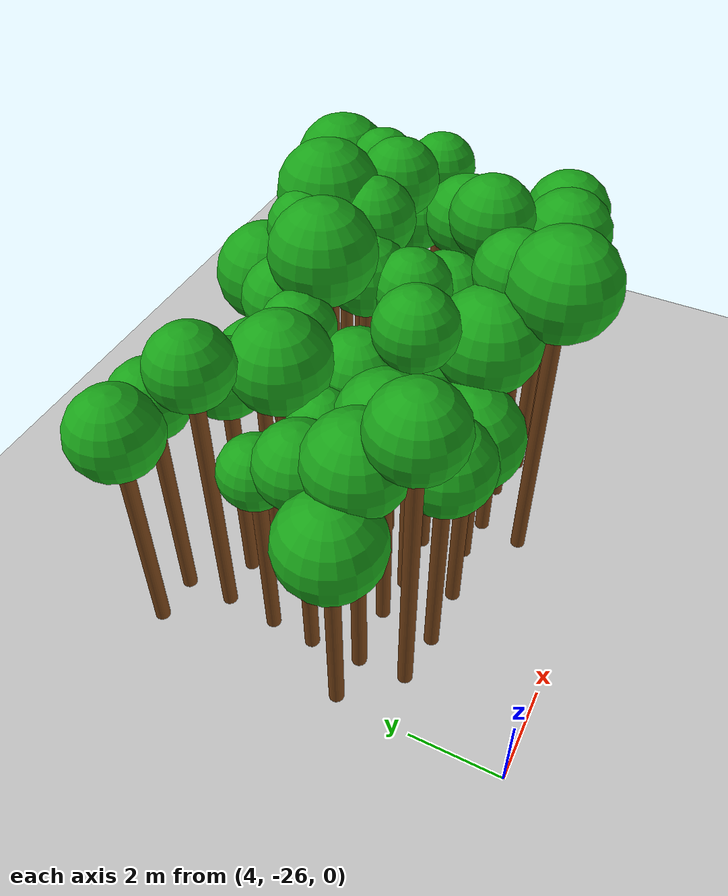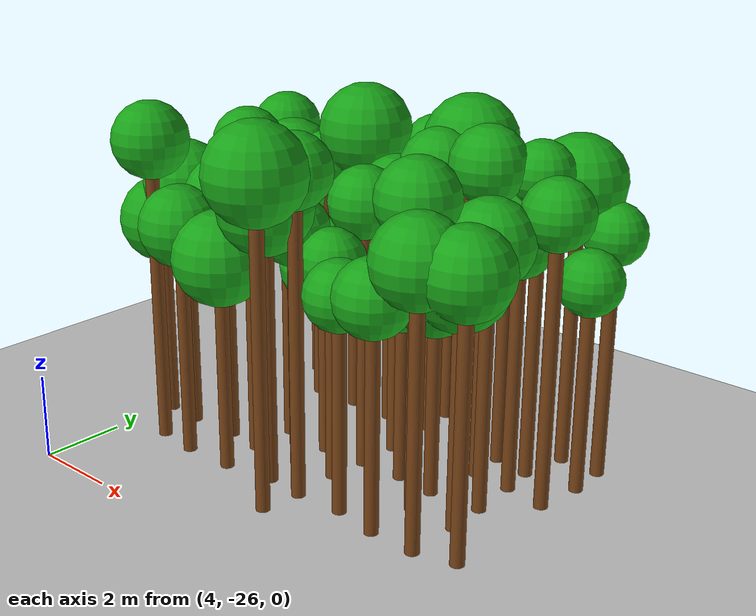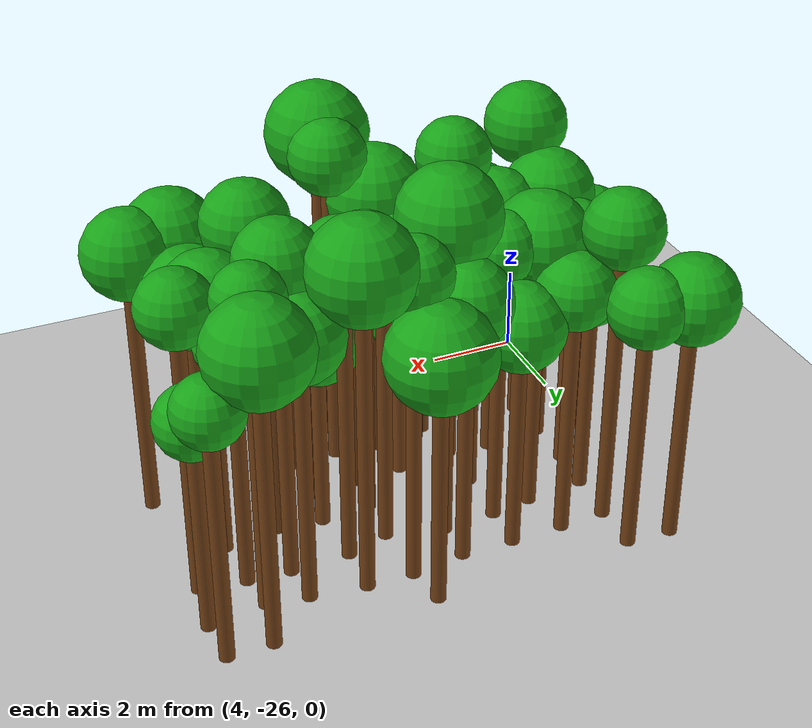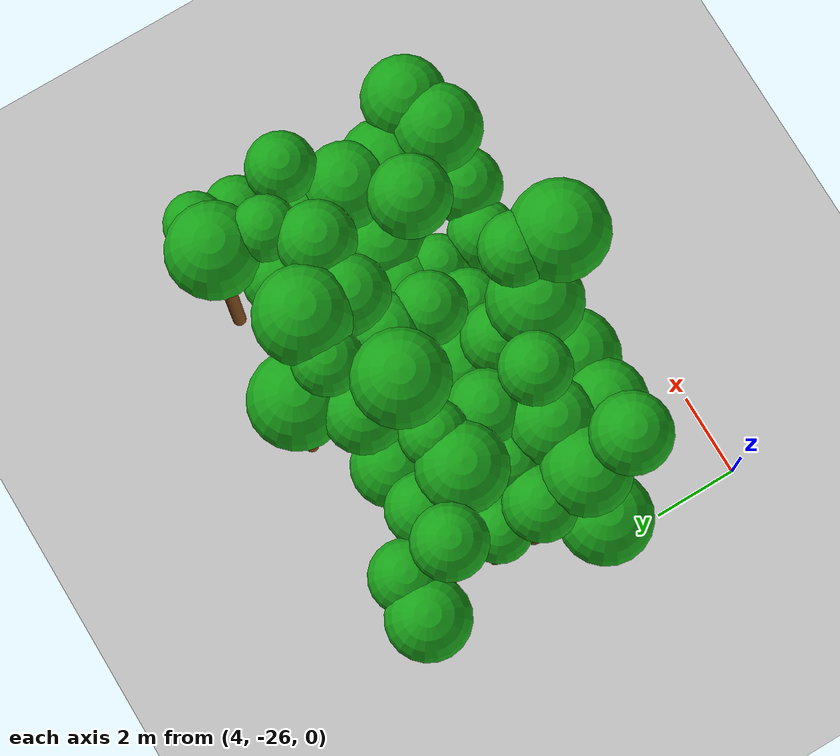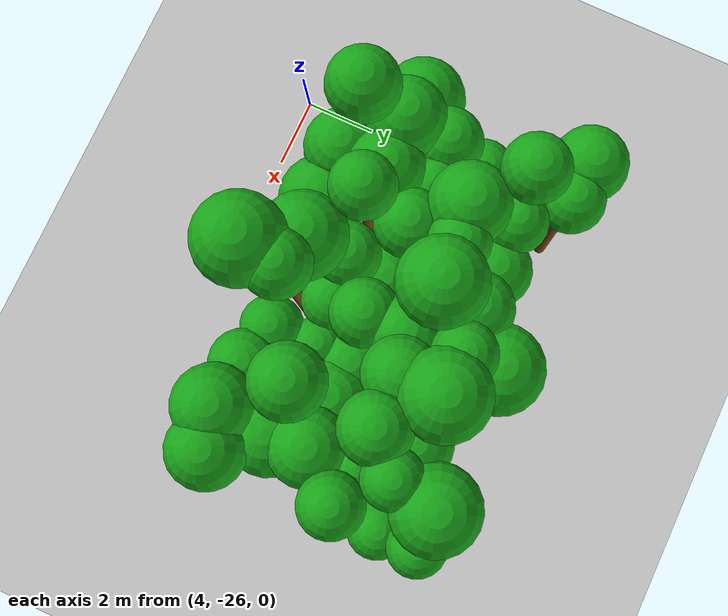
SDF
<sdf version="1.6">
 <world name="forest_world">
  <include><uri>model://sun</uri></include>
  <include><uri>model://ground_plane</uri></include>
  <model name="tree_1689_trunk">
   <static>true</static>
   <pose>4.14 -22.32 2.20 0 0 0</pose>
   <link name="link">
    <collision name="collision">
     <geometry><cylinder><radius>0.16</radius><length>4.41</length></cylinder></geometry>
    </collision>
    <visual name="visual">
     <geometry><cylinder><radius>0.16</radius><length>4.41</length></cylinder></geometry>
     <material><ambient>0.35 0.20 0.05 1</ambient><diffuse>0.45 0.25 0.08 1</diffuse></material>
    </visual>
   </link>
  </model>
  <model name="tree_1689_leaf">
   <static>true</static>
   <pose>4.14 -22.32 5.03 0 0 0</pose>
   <link name="link">
    <collision name="collision"><geometry><sphere><radius>1.04</radius></sphere></geometry></collision>
    <visual name="visual">
     <geometry><sphere><radius>1.04</radius></sphere></geometry>
     <material><ambient>0.05 0.45 0.05 1</ambient><diffuse>0.10 0.65 0.10 1</diffuse></material>
    </visual>
   </link>
  </model>
  <model name="tree_1693_trunk">
   <static>true</static>
   <pose>4.18 -17.99 2.58 0 0 0</pose>
   <link name="link">
    <collision name="collision">
     <geometry><cylinder><radius>0.16</radius><length>5.15</length></cylinder></geometry>
    </collision>
    <visual name="visual">
     <geometry><cylinder><radius>0.16</radius><length>5.15</length></cylinder></geometry>
     <material><ambient>0.35 0.20 0.05 1</ambient><diffuse>0.45 0.25 0.08 1</diffuse></material>
    </visual>
   </link>
  </model>
  <model name="tree_1693_leaf">
   <static>true</static>
   <pose>4.18 -17.99 5.71 0 0 0</pose>
   <link name="link">
    <collision name="collision"><geometry><sphere><radius>0.93</radius></sphere></geometry></collision>
    <visual name="visual">
     <geometry><sphere><radius>0.93</radius></sphere></geometry>
     <material><ambient>0.05 0.45 0.05 1</ambient><diffuse>0.10 0.65 0.10 1</diffuse></material>
    </visual>
   </link>
  </model>
  <model name="tree_1743_trunk">
   <static>true</static>
   <pose>5.14 -23.40 3.39 0 0 0</pose>
   <link name="link">
    <collision name="collision">
     <geometry><cylinder><radius>0.16</radius><length>6.78</length></cylinder></geometry>
    </collision>
    <visual name="visual">
     <geometry><cylinder><radius>0.16</radius><length>6.78</length></cylinder></geometry>
     <material><ambient>0.35 0.20 0.05 1</ambient><diffuse>0.45 0.25 0.08 1</diffuse></material>
    </visual>
   </link>
  </model>
  <model name="tree_1743_leaf">
   <static>true</static>
   <pose>5.14 -23.40 7.31 0 0 0</pose>
   <link name="link">
    <collision name="collision"><geometry><sphere><radius>0.89</radius></sphere></geometry></collision>
    <visual name="visual">
     <geometry><sphere><radius>0.89</radius></sphere></geometry>
     <material><ambient>0.05 0.45 0.05 1</ambient><diffuse>0.10 0.65 0.10 1</diffuse></material>
    </visual>
   </link>
  </model>
  <model name="tree_1744_trunk">
   <static>true</static>
   <pose>5.08 -22.37 2.77 0 0 0</pose>
   <link name="link">
    <collision name="collision">
     <geometry><cylinder><radius>0.16</radius><length>5.54</length></cylinder></geometry>
    </collision>
    <visual name="visual">
     <geometry><cylinder><radius>0.16</radius><length>5.54</length></cylinder></geometry>
     <material><ambient>0.35 0.20 0.05 1</ambient><diffuse>0.45 0.25 0.08 1</diffuse></material>
    </visual>
   </link>
  </model>
  <model name="tree_1744_leaf">
   <static>true</static>
   <pose>5.08 -22.37 6.13 0 0 0</pose>
   <link name="link">
    <collision name="collision"><geometry><sphere><radius>0.99</radius></sphere></geometry></collision>
    <visual name="visual">
     <geometry><sphere><radius>0.99</radius></sphere></geometry>
     <material><ambient>0.05 0.45 0.05 1</ambient><diffuse>0.10 0.65 0.10 1</diffuse></material>
    </visual>
   </link>
  </model>
  <model name="tree_1745_trunk">
   <static>true</static>
   <pose>5.04 -21.26 2.54 0 0 0</pose>
   <link name="link">
    <collision name="collision">
     <geometry><cylinder><radius>0.16</radius><length>5.09</length></cylinder></geometry>
    </collision>
    <visual name="visual">
     <geometry><cylinder><radius>0.16</radius><length>5.09</length></cylinder></geometry>
     <material><ambient>0.35 0.20 0.05 1</ambient><diffuse>0.45 0.25 0.08 1</diffuse></material>
    </visual>
   </link>
  </model>
  <model name="tree_1745_leaf">
   <static>true</static>
   <pose>5.04 -21.26 5.60 0 0 0</pose>
   <link name="link">
    <collision name="collision"><geometry><sphere><radius>0.85</radius></sphere></geometry></collision>
    <visual name="visual">
     <geometry><sphere><radius>0.85</radius></sphere></geometry>
     <material><ambient>0.05 0.45 0.05 1</ambient><diffuse>0.10 0.65 0.10 1</diffuse></material>
    </visual>
   </link>
  </model>
  <model name="tree_1746_trunk">
   <static>true</static>
   <pose>5.10 -20.27 2.21 0 0 0</pose>
   <link name="link">
    <collision name="collision">
     <geometry><cylinder><radius>0.16</radius><length>4.43</length></cylinder></geometry>
    </collision>
    <visual name="visual">
     <geometry><cylinder><radius>0.16</radius><length>4.43</length></cylinder></geometry>
     <material><ambient>0.35 0.20 0.05 1</ambient><diffuse>0.45 0.25 0.08 1</diffuse></material>
    </visual>
   </link>
  </model>
  <model name="tree_1746_leaf">
   <static>true</static>
   <pose>5.10 -20.27 4.88 0 0 0</pose>
   <link name="link">
    <collision name="collision"><geometry><sphere><radius>0.74</radius></sphere></geometry></collision>
    <visual name="visual">
     <geometry><sphere><radius>0.74</radius></sphere></geometry>
     <material><ambient>0.05 0.45 0.05 1</ambient><diffuse>0.10 0.65 0.10 1</diffuse></material>
    </visual>
   </link>
  </model>
  <model name="tree_1747_trunk">
   <static>true</static>
   <pose>5.18 -19.10 3.21 0 0 0</pose>
   <link name="link">
    <collision name="collision">
     <geometry><cylinder><radius>0.16</radius><length>6.42</length></cylinder></geometry>
    </collision>
    <visual name="visual">
     <geometry><cylinder><radius>0.16</radius><length>6.42</length></cylinder></geometry>
     <material><ambient>0.35 0.20 0.05 1</ambient><diffuse>0.45 0.25 0.08 1</diffuse></material>
    </visual>
   </link>
  </model>
  <model name="tree_1747_leaf">
   <static>true</static>
   <pose>5.18 -19.10 6.92 0 0 0</pose>
   <link name="link">
    <collision name="collision"><geometry><sphere><radius>0.83</radius></sphere></geometry></collision>
    <visual name="visual">
     <geometry><sphere><radius>0.83</radius></sphere></geometry>
     <material><ambient>0.05 0.45 0.05 1</ambient><diffuse>0.10 0.65 0.10 1</diffuse></material>
    </visual>
   </link>
  </model>
  <model name="tree_1748_trunk">
   <static>true</static>
   <pose>5.16 -18.04 2.61 0 0 0</pose>
   <link name="link">
    <collision name="collision">
     <geometry><cylinder><radius>0.16</radius><length>5.22</length></cylinder></geometry>
    </collision>
    <visual name="visual">
     <geometry><cylinder><radius>0.16</radius><length>5.22</length></cylinder></geometry>
     <material><ambient>0.35 0.20 0.05 1</ambient><diffuse>0.45 0.25 0.08 1</diffuse></material>
    </visual>
   </link>
  </model>
  <model name="tree_1748_leaf">
   <static>true</static>
   <pose>5.16 -18.04 5.72 0 0 0</pose>
   <link name="link">
    <collision name="collision"><geometry><sphere><radius>0.82</radius></sphere></geometry></collision>
    <visual name="visual">
     <geometry><sphere><radius>0.82</radius></sphere></geometry>
     <material><ambient>0.05 0.45 0.05 1</ambient><diffuse>0.10 0.65 0.10 1</diffuse></material>
    </visual>
   </link>
  </model>
  <model name="tree_1798_trunk">
   <static>true</static>
   <pose>6.20 -23.54 2.50 0 0 0</pose>
   <link name="link">
    <collision name="collision">
     <geometry><cylinder><radius>0.16</radius><length>4.99</length></cylinder></geometry>
    </collision>
    <visual name="visual">
     <geometry><cylinder><radius>0.16</radius><length>4.99</length></cylinder></geometry>
     <material><ambient>0.35 0.20 0.05 1</ambient><diffuse>0.45 0.25 0.08 1</diffuse></material>
    </visual>
   </link>
  </model>
  <model name="tree_1798_leaf">
   <static>true</static>
   <pose>6.20 -23.54 5.55 0 0 0</pose>
   <link name="link">
    <collision name="collision"><geometry><sphere><radius>0.94</radius></sphere></geometry></collision>
    <visual name="visual">
     <geometry><sphere><radius>0.94</radius></sphere></geometry>
     <material><ambient>0.05 0.45 0.05 1</ambient><diffuse>0.10 0.65 0.10 1</diffuse></material>
    </visual>
   </link>
  </model>
  <model name="tree_1799_trunk">
   <static>true</static>
   <pose>6.36 -22.31 2.69 0 0 0</pose>
   <link name="link">
    <collision name="collision">
     <geometry><cylinder><radius>0.16</radius><length>5.38</length></cylinder></geometry>
    </collision>
    <visual name="visual">
     <geometry><cylinder><radius>0.16</radius><length>5.38</length></cylinder></geometry>
     <material><ambient>0.35 0.20 0.05 1</ambient><diffuse>0.45 0.25 0.08 1</diffuse></material>
    </visual>
   </link>
  </model>
  <model name="tree_1799_leaf">
   <static>true</static>
   <pose>6.36 -22.31 5.97 0 0 0</pose>
   <link name="link">
    <collision name="collision"><geometry><sphere><radius>0.97</radius></sphere></geometry></collision>
    <visual name="visual">
     <geometry><sphere><radius>0.97</radius></sphere></geometry>
     <material><ambient>0.05 0.45 0.05 1</ambient><diffuse>0.10 0.65 0.10 1</diffuse></material>
    </visual>
   </link>
  </model>
  <model name="tree_1800_trunk">
   <static>true</static>
   <pose>6.15 -21.15 2.57 0 0 0</pose>
   <link name="link">
    <collision name="collision">
     <geometry><cylinder><radius>0.16</radius><length>5.13</length></cylinder></geometry>
    </collision>
    <visual name="visual">
     <geometry><cylinder><radius>0.16</radius><length>5.13</length></cylinder></geometry>
     <material><ambient>0.35 0.20 0.05 1</ambient><diffuse>0.45 0.25 0.08 1</diffuse></material>
    </visual>
   </link>
  </model>
  <model name="tree_1800_leaf">
   <static>true</static>
   <pose>6.15 -21.15 5.56 0 0 0</pose>
   <link name="link">
    <collision name="collision"><geometry><sphere><radius>0.71</radius></sphere></geometry></collision>
    <visual name="visual">
     <geometry><sphere><radius>0.71</radius></sphere></geometry>
     <material><ambient>0.05 0.45 0.05 1</ambient><diffuse>0.10 0.65 0.10 1</diffuse></material>
    </visual>
   </link>
  </model>
  <model name="tree_1801_trunk">
   <static>true</static>
   <pose>6.42 -20.15 2.92 0 0 0</pose>
   <link name="link">
    <collision name="collision">
     <geometry><cylinder><radius>0.16</radius><length>5.85</length></cylinder></geometry>
    </collision>
    <visual name="visual">
     <geometry><cylinder><radius>0.16</radius><length>5.85</length></cylinder></geometry>
     <material><ambient>0.35 0.20 0.05 1</ambient><diffuse>0.45 0.25 0.08 1</diffuse></material>
    </visual>
   </link>
  </model>
  <model name="tree_1801_leaf">
   <static>true</static>
   <pose>6.42 -20.15 6.45 0 0 0</pose>
   <link name="link">
    <collision name="collision"><geometry><sphere><radius>1.00</radius></sphere></geometry></collision>
    <visual name="visual">
     <geometry><sphere><radius>1.00</radius></sphere></geometry>
     <material><ambient>0.05 0.45 0.05 1</ambient><diffuse>0.10 0.65 0.10 1</diffuse></material>
    </visual>
   </link>
  </model>
  <model name="tree_1802_trunk">
   <static>true</static>
   <pose>6.20 -19.05 2.66 0 0 0</pose>
   <link name="link">
    <collision name="collision">
     <geometry><cylinder><radius>0.16</radius><length>5.32</length></cylinder></geometry>
    </collision>
    <visual name="visual">
     <geometry><cylinder><radius>0.16</radius><length>5.32</length></cylinder></geometry>
     <material><ambient>0.35 0.20 0.05 1</ambient><diffuse>0.45 0.25 0.08 1</diffuse></material>
    </visual>
   </link>
  </model>
  <model name="tree_1802_leaf">
   <static>true</static>
   <pose>6.20 -19.05 5.80 0 0 0</pose>
   <link name="link">
    <collision name="collision"><geometry><sphere><radius>0.81</radius></sphere></geometry></collision>
    <visual name="visual">
     <geometry><sphere><radius>0.81</radius></sphere></geometry>
     <material><ambient>0.05 0.45 0.05 1</ambient><diffuse>0.10 0.65 0.10 1</diffuse></material>
    </visual>
   </link>
  </model>
  <model name="tree_1853_trunk">
   <static>true</static>
   <pose>7.46 -23.51 2.22 0 0 0</pose>
   <link name="link">
    <collision name="collision">
     <geometry><cylinder><radius>0.16</radius><length>4.43</length></cylinder></geometry>
    </collision>
    <visual name="visual">
     <geometry><cylinder><radius>0.16</radius><length>4.43</length></cylinder></geometry>
     <material><ambient>0.35 0.20 0.05 1</ambient><diffuse>0.45 0.25 0.08 1</diffuse></material>
    </visual>
   </link>
  </model>
  <model name="tree_1853_leaf">
   <static>true</static>
   <pose>7.46 -23.51 5.08 0 0 0</pose>
   <link name="link">
    <collision name="collision"><geometry><sphere><radius>1.08</radius></sphere></geometry></collision>
    <visual name="visual">
     <geometry><sphere><radius>1.08</radius></sphere></geometry>
     <material><ambient>0.05 0.45 0.05 1</ambient><diffuse>0.10 0.65 0.10 1</diffuse></material>
    </visual>
   </link>
  </model>
  <model name="tree_1854_trunk">
   <static>true</static>
   <pose>7.28 -22.41 3.47 0 0 0</pose>
   <link name="link">
    <collision name="collision">
     <geometry><cylinder><radius>0.16</radius><length>6.95</length></cylinder></geometry>
    </collision>
    <visual name="visual">
     <geometry><cylinder><radius>0.16</radius><length>6.95</length></cylinder></geometry>
     <material><ambient>0.35 0.20 0.05 1</ambient><diffuse>0.45 0.25 0.08 1</diffuse></material>
    </visual>
   </link>
  </model>
  <model name="tree_1854_leaf">
   <static>true</static>
   <pose>7.28 -22.41 7.42 0 0 0</pose>
   <link name="link">
    <collision name="collision"><geometry><sphere><radius>0.79</radius></sphere></geometry></collision>
    <visual name="visual">
     <geometry><sphere><radius>0.79</radius></sphere></geometry>
     <material><ambient>0.05 0.45 0.05 1</ambient><diffuse>0.10 0.65 0.10 1</diffuse></material>
    </visual>
   </link>
  </model>
  <model name="tree_1855_trunk">
   <static>true</static>
   <pose>7.31 -21.27 2.72 0 0 0</pose>
   <link name="link">
    <collision name="collision">
     <geometry><cylinder><radius>0.16</radius><length>5.43</length></cylinder></geometry>
    </collision>
    <visual name="visual">
     <geometry><cylinder><radius>0.16</radius><length>5.43</length></cylinder></geometry>
     <material><ambient>0.35 0.20 0.05 1</ambient><diffuse>0.45 0.25 0.08 1</diffuse></material>
    </visual>
   </link>
  </model>
  <model name="tree_1855_leaf">
   <static>true</static>
   <pose>7.31 -21.27 5.95 0 0 0</pose>
   <link name="link">
    <collision name="collision"><geometry><sphere><radius>0.86</radius></sphere></geometry></collision>
    <visual name="visual">
     <geometry><sphere><radius>0.86</radius></sphere></geometry>
     <material><ambient>0.05 0.45 0.05 1</ambient><diffuse>0.10 0.65 0.10 1</diffuse></material>
    </visual>
   </link>
  </model>
  <model name="tree_1856_trunk">
   <static>true</static>
   <pose>7.33 -20.01 3.03 0 0 0</pose>
   <link name="link">
    <collision name="collision">
     <geometry><cylinder><radius>0.16</radius><length>6.07</length></cylinder></geometry>
    </collision>
    <visual name="visual">
     <geometry><cylinder><radius>0.16</radius><length>6.07</length></cylinder></geometry>
     <material><ambient>0.35 0.20 0.05 1</ambient><diffuse>0.45 0.25 0.08 1</diffuse></material>
    </visual>
   </link>
  </model>
  <model name="tree_1856_leaf">
   <static>true</static>
   <pose>7.33 -20.01 6.52 0 0 0</pose>
   <link name="link">
    <collision name="collision"><geometry><sphere><radius>0.75</radius></sphere></geometry></collision>
    <visual name="visual">
     <geometry><sphere><radius>0.75</radius></sphere></geometry>
     <material><ambient>0.05 0.45 0.05 1</ambient><diffuse>0.10 0.65 0.10 1</diffuse></material>
    </visual>
   </link>
  </model>
  <model name="tree_1857_trunk">
   <static>true</static>
   <pose>7.37 -19.02 2.37 0 0 0</pose>
   <link name="link">
    <collision name="collision">
     <geometry><cylinder><radius>0.16</radius><length>4.74</length></cylinder></geometry>
    </collision>
    <visual name="visual">
     <geometry><cylinder><radius>0.16</radius><length>4.74</length></cylinder></geometry>
     <material><ambient>0.35 0.20 0.05 1</ambient><diffuse>0.45 0.25 0.08 1</diffuse></material>
    </visual>
   </link>
  </model>
  <model name="tree_1857_leaf">
   <static>true</static>
   <pose>7.37 -19.02 5.29 0 0 0</pose>
   <link name="link">
    <collision name="collision"><geometry><sphere><radius>0.92</radius></sphere></geometry></collision>
    <visual name="visual">
     <geometry><sphere><radius>0.92</radius></sphere></geometry>
     <material><ambient>0.05 0.45 0.05 1</ambient><diffuse>0.10 0.65 0.10 1</diffuse></material>
    </visual>
   </link>
  </model>
  <model name="tree_1908_trunk">
   <static>true</static>
   <pose>8.68 -23.29 2.90 0 0 0</pose>
   <link name="link">
    <collision name="collision">
     <geometry><cylinder><radius>0.16</radius><length>5.80</length></cylinder></geometry>
    </collision>
    <visual name="visual">
     <geometry><cylinder><radius>0.16</radius><length>5.80</length></cylinder></geometry>
     <material><ambient>0.35 0.20 0.05 1</ambient><diffuse>0.45 0.25 0.08 1</diffuse></material>
    </visual>
   </link>
  </model>
  <model name="tree_1908_leaf">
   <static>true</static>
   <pose>8.68 -23.29 6.44 0 0 0</pose>
   <link name="link">
    <collision name="collision"><geometry><sphere><radius>1.06</radius></sphere></geometry></collision>
    <visual name="visual">
     <geometry><sphere><radius>1.06</radius></sphere></geometry>
     <material><ambient>0.05 0.45 0.05 1</ambient><diffuse>0.10 0.65 0.10 1</diffuse></material>
    </visual>
   </link>
  </model>
  <model name="tree_1909_trunk">
   <static>true</static>
   <pose>8.53 -22.30 2.59 0 0 0</pose>
   <link name="link">
    <collision name="collision">
     <geometry><cylinder><radius>0.16</radius><length>5.19</length></cylinder></geometry>
    </collision>
    <visual name="visual">
     <geometry><cylinder><radius>0.16</radius><length>5.19</length></cylinder></geometry>
     <material><ambient>0.35 0.20 0.05 1</ambient><diffuse>0.45 0.25 0.08 1</diffuse></material>
    </visual>
   </link>
  </model>
  <model name="tree_1909_leaf">
   <static>true</static>
   <pose>8.53 -22.30 5.67 0 0 0</pose>
   <link name="link">
    <collision name="collision"><geometry><sphere><radius>0.81</radius></sphere></geometry></collision>
    <visual name="visual">
     <geometry><sphere><radius>0.81</radius></sphere></geometry>
     <material><ambient>0.05 0.45 0.05 1</ambient><diffuse>0.10 0.65 0.10 1</diffuse></material>
    </visual>
   </link>
  </model>
  <model name="tree_1910_trunk">
   <static>true</static>
   <pose>8.57 -21.37 2.02 0 0 0</pose>
   <link name="link">
    <collision name="collision">
     <geometry><cylinder><radius>0.16</radius><length>4.04</length></cylinder></geometry>
    </collision>
    <visual name="visual">
     <geometry><cylinder><radius>0.16</radius><length>4.04</length></cylinder></geometry>
     <material><ambient>0.35 0.20 0.05 1</ambient><diffuse>0.45 0.25 0.08 1</diffuse></material>
    </visual>
   </link>
  </model>
  <model name="tree_1910_leaf">
   <static>true</static>
   <pose>8.57 -21.37 4.66 0 0 0</pose>
   <link name="link">
    <collision name="collision"><geometry><sphere><radius>1.03</radius></sphere></geometry></collision>
    <visual name="visual">
     <geometry><sphere><radius>1.03</radius></sphere></geometry>
     <material><ambient>0.05 0.45 0.05 1</ambient><diffuse>0.10 0.65 0.10 1</diffuse></material>
    </visual>
   </link>
  </model>
  <model name="tree_1911_trunk">
   <static>true</static>
   <pose>8.51 -19.94 3.42 0 0 0</pose>
   <link name="link">
    <collision name="collision">
     <geometry><cylinder><radius>0.16</radius><length>6.84</length></cylinder></geometry>
    </collision>
    <visual name="visual">
     <geometry><cylinder><radius>0.16</radius><length>6.84</length></cylinder></geometry>
     <material><ambient>0.35 0.20 0.05 1</ambient><diffuse>0.45 0.25 0.08 1</diffuse></material>
    </visual>
   </link>
  </model>
  <model name="tree_1911_leaf">
   <static>true</static>
   <pose>8.51 -19.94 7.48 0 0 0</pose>
   <link name="link">
    <collision name="collision"><geometry><sphere><radius>1.06</radius></sphere></geometry></collision>
    <visual name="visual">
     <geometry><sphere><radius>1.06</radius></sphere></geometry>
     <material><ambient>0.05 0.45 0.05 1</ambient><diffuse>0.10 0.65 0.10 1</diffuse></material>
    </visual>
   </link>
  </model>
  <model name="tree_1912_trunk">
   <static>true</static>
   <pose>8.51 -19.03 2.78 0 0 0</pose>
   <link name="link">
    <collision name="collision">
     <geometry><cylinder><radius>0.16</radius><length>5.56</length></cylinder></geometry>
    </collision>
    <visual name="visual">
     <geometry><cylinder><radius>0.16</radius><length>5.56</length></cylinder></geometry>
     <material><ambient>0.35 0.20 0.05 1</ambient><diffuse>0.45 0.25 0.08 1</diffuse></material>
    </visual>
   </link>
  </model>
  <model name="tree_1912_leaf">
   <static>true</static>
   <pose>8.51 -19.03 6.10 0 0 0</pose>
   <link name="link">
    <collision name="collision"><geometry><sphere><radius>0.90</radius></sphere></geometry></collision>
    <visual name="visual">
     <geometry><sphere><radius>0.90</radius></sphere></geometry>
     <material><ambient>0.05 0.45 0.05 1</ambient><diffuse>0.10 0.65 0.10 1</diffuse></material>
    </visual>
   </link>
  </model>
  <model name="tree_1962_trunk">
   <static>true</static>
   <pose>9.49 -24.33 3.42 0 0 0</pose>
   <link name="link">
    <collision name="collision">
     <geometry><cylinder><radius>0.16</radius><length>6.84</length></cylinder></geometry>
    </collision>
    <visual name="visual">
     <geometry><cylinder><radius>0.16</radius><length>6.84</length></cylinder></geometry>
     <material><ambient>0.35 0.20 0.05 1</ambient><diffuse>0.45 0.25 0.08 1</diffuse></material>
    </visual>
   </link>
  </model>
  <model name="tree_1962_leaf">
   <static>true</static>
   <pose>9.49 -24.33 7.50 0 0 0</pose>
   <link name="link">
    <collision name="collision"><geometry><sphere><radius>1.10</radius></sphere></geometry></collision>
    <visual name="visual">
     <geometry><sphere><radius>1.10</radius></sphere></geometry>
     <material><ambient>0.05 0.45 0.05 1</ambient><diffuse>0.10 0.65 0.10 1</diffuse></material>
    </visual>
   </link>
  </model>
  <model name="tree_1963_trunk">
   <static>true</static>
   <pose>9.63 -23.38 3.46 0 0 0</pose>
   <link name="link">
    <collision name="collision">
     <geometry><cylinder><radius>0.16</radius><length>6.91</length></cylinder></geometry>
    </collision>
    <visual name="visual">
     <geometry><cylinder><radius>0.16</radius><length>6.91</length></cylinder></geometry>
     <material><ambient>0.35 0.20 0.05 1</ambient><diffuse>0.45 0.25 0.08 1</diffuse></material>
    </visual>
   </link>
  </model>
  <model name="tree_1963_leaf">
   <static>true</static>
   <pose>9.63 -23.38 7.40 0 0 0</pose>
   <link name="link">
    <collision name="collision"><geometry><sphere><radius>0.82</radius></sphere></geometry></collision>
    <visual name="visual">
     <geometry><sphere><radius>0.82</radius></sphere></geometry>
     <material><ambient>0.05 0.45 0.05 1</ambient><diffuse>0.10 0.65 0.10 1</diffuse></material>
    </visual>
   </link>
  </model>
  <model name="tree_1964_trunk">
   <static>true</static>
   <pose>9.59 -22.22 2.34 0 0 0</pose>
   <link name="link">
    <collision name="collision">
     <geometry><cylinder><radius>0.16</radius><length>4.69</length></cylinder></geometry>
    </collision>
    <visual name="visual">
     <geometry><cylinder><radius>0.16</radius><length>4.69</length></cylinder></geometry>
     <material><ambient>0.35 0.20 0.05 1</ambient><diffuse>0.45 0.25 0.08 1</diffuse></material>
    </visual>
   </link>
  </model>
  <model name="tree_1964_leaf">
   <static>true</static>
   <pose>9.59 -22.22 5.15 0 0 0</pose>
   <link name="link">
    <collision name="collision"><geometry><sphere><radius>0.77</radius></sphere></geometry></collision>
    <visual name="visual">
     <geometry><sphere><radius>0.77</radius></sphere></geometry>
     <material><ambient>0.05 0.45 0.05 1</ambient><diffuse>0.10 0.65 0.10 1</diffuse></material>
    </visual>
   </link>
  </model>
  <model name="tree_1965_trunk">
   <static>true</static>
   <pose>9.69 -21.30 2.91 0 0 0</pose>
   <link name="link">
    <collision name="collision">
     <geometry><cylinder><radius>0.16</radius><length>5.82</length></cylinder></geometry>
    </collision>
    <visual name="visual">
     <geometry><cylinder><radius>0.16</radius><length>5.82</length></cylinder></geometry>
     <material><ambient>0.35 0.20 0.05 1</ambient><diffuse>0.45 0.25 0.08 1</diffuse></material>
    </visual>
   </link>
  </model>
  <model name="tree_1965_leaf">
   <static>true</static>
   <pose>9.69 -21.30 6.31 0 0 0</pose>
   <link name="link">
    <collision name="collision"><geometry><sphere><radius>0.82</radius></sphere></geometry></collision>
    <visual name="visual">
     <geometry><sphere><radius>0.82</radius></sphere></geometry>
     <material><ambient>0.05 0.45 0.05 1</ambient><diffuse>0.10 0.65 0.10 1</diffuse></material>
    </visual>
   </link>
  </model>
  <model name="tree_1966_trunk">
   <static>true</static>
   <pose>9.72 -20.26 2.88 0 0 0</pose>
   <link name="link">
    <collision name="collision">
     <geometry><cylinder><radius>0.16</radius><length>5.76</length></cylinder></geometry>
    </collision>
    <visual name="visual">
     <geometry><cylinder><radius>0.16</radius><length>5.76</length></cylinder></geometry>
     <material><ambient>0.35 0.20 0.05 1</ambient><diffuse>0.45 0.25 0.08 1</diffuse></material>
    </visual>
   </link>
  </model>
  <model name="tree_1966_leaf">
   <static>true</static>
   <pose>9.72 -20.26 6.29 0 0 0</pose>
   <link name="link">
    <collision name="collision"><geometry><sphere><radius>0.88</radius></sphere></geometry></collision>
    <visual name="visual">
     <geometry><sphere><radius>0.88</radius></sphere></geometry>
     <material><ambient>0.05 0.45 0.05 1</ambient><diffuse>0.10 0.65 0.10 1</diffuse></material>
    </visual>
   </link>
  </model>
  <model name="tree_1967_trunk">
   <static>true</static>
   <pose>9.69 -18.87 3.30 0 0 0</pose>
   <link name="link">
    <collision name="collision">
     <geometry><cylinder><radius>0.16</radius><length>6.59</length></cylinder></geometry>
    </collision>
    <visual name="visual">
     <geometry><cylinder><radius>0.16</radius><length>6.59</length></cylinder></geometry>
     <material><ambient>0.35 0.20 0.05 1</ambient><diffuse>0.45 0.25 0.08 1</diffuse></material>
    </visual>
   </link>
  </model>
  <model name="tree_1967_leaf">
   <static>true</static>
   <pose>9.69 -18.87 7.06 0 0 0</pose>
   <link name="link">
    <collision name="collision"><geometry><sphere><radius>0.77</radius></sphere></geometry></collision>
    <visual name="visual">
     <geometry><sphere><radius>0.77</radius></sphere></geometry>
     <material><ambient>0.05 0.45 0.05 1</ambient><diffuse>0.10 0.65 0.10 1</diffuse></material>
    </visual>
   </link>
  </model>
  <model name="tree_1968_trunk">
   <static>true</static>
   <pose>9.53 -17.99 2.55 0 0 0</pose>
   <link name="link">
    <collision name="collision">
     <geometry><cylinder><radius>0.16</radius><length>5.10</length></cylinder></geometry>
    </collision>
    <visual name="visual">
     <geometry><cylinder><radius>0.16</radius><length>5.10</length></cylinder></geometry>
     <material><ambient>0.35 0.20 0.05 1</ambient><diffuse>0.45 0.25 0.08 1</diffuse></material>
    </visual>
   </link>
  </model>
  <model name="tree_1968_leaf">
   <static>true</static>
   <pose>9.53 -17.99 5.76 0 0 0</pose>
   <link name="link">
    <collision name="collision"><geometry><sphere><radius>1.10</radius></sphere></geometry></collision>
    <visual name="visual">
     <geometry><sphere><radius>1.10</radius></sphere></geometry>
     <material><ambient>0.05 0.45 0.05 1</ambient><diffuse>0.10 0.65 0.10 1</diffuse></material>
    </visual>
   </link>
  </model>
  <model name="tree_2018_trunk">
   <static>true</static>
   <pose>10.78 -23.29 2.26 0 0 0</pose>
   <link name="link">
    <collision name="collision">
     <geometry><cylinder><radius>0.16</radius><length>4.52</length></cylinder></geometry>
    </collision>
    <visual name="visual">
     <geometry><cylinder><radius>0.16</radius><length>4.52</length></cylinder></geometry>
     <material><ambient>0.35 0.20 0.05 1</ambient><diffuse>0.45 0.25 0.08 1</diffuse></material>
    </visual>
   </link>
  </model>
  <model name="tree_2018_leaf">
   <static>true</static>
   <pose>10.78 -23.29 4.99 0 0 0</pose>
   <link name="link">
    <collision name="collision"><geometry><sphere><radius>0.78</radius></sphere></geometry></collision>
    <visual name="visual">
     <geometry><sphere><radius>0.78</radius></sphere></geometry>
     <material><ambient>0.05 0.45 0.05 1</ambient><diffuse>0.10 0.65 0.10 1</diffuse></material>
    </visual>
   </link>
  </model>
  <model name="tree_2019_trunk">
   <static>true</static>
   <pose>10.70 -22.14 2.19 0 0 0</pose>
   <link name="link">
    <collision name="collision">
     <geometry><cylinder><radius>0.16</radius><length>4.37</length></cylinder></geometry>
    </collision>
    <visual name="visual">
     <geometry><cylinder><radius>0.16</radius><length>4.37</length></cylinder></geometry>
     <material><ambient>0.35 0.20 0.05 1</ambient><diffuse>0.45 0.25 0.08 1</diffuse></material>
    </visual>
   </link>
  </model>
  <model name="tree_2019_leaf">
   <static>true</static>
   <pose>10.70 -22.14 4.79 0 0 0</pose>
   <link name="link">
    <collision name="collision"><geometry><sphere><radius>0.70</radius></sphere></geometry></collision>
    <visual name="visual">
     <geometry><sphere><radius>0.70</radius></sphere></geometry>
     <material><ambient>0.05 0.45 0.05 1</ambient><diffuse>0.10 0.65 0.10 1</diffuse></material>
    </visual>
   </link>
  </model>
  <model name="tree_2020_trunk">
   <static>true</static>
   <pose>10.76 -21.24 2.00 0 0 0</pose>
   <link name="link">
    <collision name="collision">
     <geometry><cylinder><radius>0.16</radius><length>4.00</length></cylinder></geometry>
    </collision>
    <visual name="visual">
     <geometry><cylinder><radius>0.16</radius><length>4.00</length></cylinder></geometry>
     <material><ambient>0.35 0.20 0.05 1</ambient><diffuse>0.45 0.25 0.08 1</diffuse></material>
    </visual>
   </link>
  </model>
  <model name="tree_2020_leaf">
   <static>true</static>
   <pose>10.76 -21.24 4.57 0 0 0</pose>
   <link name="link">
    <collision name="collision"><geometry><sphere><radius>0.95</radius></sphere></geometry></collision>
    <visual name="visual">
     <geometry><sphere><radius>0.95</radius></sphere></geometry>
     <material><ambient>0.05 0.45 0.05 1</ambient><diffuse>0.10 0.65 0.10 1</diffuse></material>
    </visual>
   </link>
  </model>
  <model name="tree_2021_trunk">
   <static>true</static>
   <pose>10.66 -19.97 3.24 0 0 0</pose>
   <link name="link">
    <collision name="collision">
     <geometry><cylinder><radius>0.16</radius><length>6.48</length></cylinder></geometry>
    </collision>
    <visual name="visual">
     <geometry><cylinder><radius>0.16</radius><length>6.48</length></cylinder></geometry>
     <material><ambient>0.35 0.20 0.05 1</ambient><diffuse>0.45 0.25 0.08 1</diffuse></material>
    </visual>
   </link>
  </model>
  <model name="tree_2021_leaf">
   <static>true</static>
   <pose>10.66 -19.97 7.00 0 0 0</pose>
   <link name="link">
    <collision name="collision"><geometry><sphere><radius>0.88</radius></sphere></geometry></collision>
    <visual name="visual">
     <geometry><sphere><radius>0.88</radius></sphere></geometry>
     <material><ambient>0.05 0.45 0.05 1</ambient><diffuse>0.10 0.65 0.10 1</diffuse></material>
    </visual>
   </link>
  </model>
  <model name="tree_2022_trunk">
   <static>true</static>
   <pose>10.69 -18.90 3.36 0 0 0</pose>
   <link name="link">
    <collision name="collision">
     <geometry><cylinder><radius>0.16</radius><length>6.73</length></cylinder></geometry>
    </collision>
    <visual name="visual">
     <geometry><cylinder><radius>0.16</radius><length>6.73</length></cylinder></geometry>
     <material><ambient>0.35 0.20 0.05 1</ambient><diffuse>0.45 0.25 0.08 1</diffuse></material>
    </visual>
   </link>
  </model>
  <model name="tree_2022_leaf">
   <static>true</static>
   <pose>10.69 -18.90 7.37 0 0 0</pose>
   <link name="link">
    <collision name="collision"><geometry><sphere><radius>1.08</radius></sphere></geometry></collision>
    <visual name="visual">
     <geometry><sphere><radius>1.08</radius></sphere></geometry>
     <material><ambient>0.05 0.45 0.05 1</ambient><diffuse>0.10 0.65 0.10 1</diffuse></material>
    </visual>
   </link>
  </model>
  <model name="tree_2073_trunk">
   <static>true</static>
   <pose>11.85 -23.47 2.37 0 0 0</pose>
   <link name="link">
    <collision name="collision">
     <geometry><cylinder><radius>0.16</radius><length>4.75</length></cylinder></geometry>
    </collision>
    <visual name="visual">
     <geometry><cylinder><radius>0.16</radius><length>4.75</length></cylinder></geometry>
     <material><ambient>0.35 0.20 0.05 1</ambient><diffuse>0.45 0.25 0.08 1</diffuse></material>
    </visual>
   </link>
  </model>
  <model name="tree_2073_leaf">
   <static>true</static>
   <pose>11.85 -23.47 5.26 0 0 0</pose>
   <link name="link">
    <collision name="collision"><geometry><sphere><radius>0.85</radius></sphere></geometry></collision>
    <visual name="visual">
     <geometry><sphere><radius>0.85</radius></sphere></geometry>
     <material><ambient>0.05 0.45 0.05 1</ambient><diffuse>0.10 0.65 0.10 1</diffuse></material>
    </visual>
   </link>
  </model>
  <model name="tree_2074_trunk">
   <static>true</static>
   <pose>11.83 -22.13 3.20 0 0 0</pose>
   <link name="link">
    <collision name="collision">
     <geometry><cylinder><radius>0.16</radius><length>6.41</length></cylinder></geometry>
    </collision>
    <visual name="visual">
     <geometry><cylinder><radius>0.16</radius><length>6.41</length></cylinder></geometry>
     <material><ambient>0.35 0.20 0.05 1</ambient><diffuse>0.45 0.25 0.08 1</diffuse></material>
    </visual>
   </link>
  </model>
  <model name="tree_2074_leaf">
   <static>true</static>
   <pose>11.83 -22.13 6.96 0 0 0</pose>
   <link name="link">
    <collision name="collision"><geometry><sphere><radius>0.91</radius></sphere></geometry></collision>
    <visual name="visual">
     <geometry><sphere><radius>0.91</radius></sphere></geometry>
     <material><ambient>0.05 0.45 0.05 1</ambient><diffuse>0.10 0.65 0.10 1</diffuse></material>
    </visual>
   </link>
  </model>
  <model name="tree_2075_trunk">
   <static>true</static>
   <pose>11.72 -21.33 2.10 0 0 0</pose>
   <link name="link">
    <collision name="collision">
     <geometry><cylinder><radius>0.16</radius><length>4.19</length></cylinder></geometry>
    </collision>
    <visual name="visual">
     <geometry><cylinder><radius>0.16</radius><length>4.19</length></cylinder></geometry>
     <material><ambient>0.35 0.20 0.05 1</ambient><diffuse>0.45 0.25 0.08 1</diffuse></material>
    </visual>
   </link>
  </model>
  <model name="tree_2075_leaf">
   <static>true</static>
   <pose>11.72 -21.33 4.79 0 0 0</pose>
   <link name="link">
    <collision name="collision"><geometry><sphere><radius>1.00</radius></sphere></geometry></collision>
    <visual name="visual">
     <geometry><sphere><radius>1.00</radius></sphere></geometry>
     <material><ambient>0.05 0.45 0.05 1</ambient><diffuse>0.10 0.65 0.10 1</diffuse></material>
    </visual>
   </link>
  </model>
  <model name="tree_2076_trunk">
   <static>true</static>
   <pose>11.94 -19.95 3.38 0 0 0</pose>
   <link name="link">
    <collision name="collision">
     <geometry><cylinder><radius>0.16</radius><length>6.77</length></cylinder></geometry>
    </collision>
    <visual name="visual">
     <geometry><cylinder><radius>0.16</radius><length>6.77</length></cylinder></geometry>
     <material><ambient>0.35 0.20 0.05 1</ambient><diffuse>0.45 0.25 0.08 1</diffuse></material>
    </visual>
   </link>
  </model>
  <model name="tree_2076_leaf">
   <static>true</static>
   <pose>11.94 -19.95 7.28 0 0 0</pose>
   <link name="link">
    <collision name="collision"><geometry><sphere><radius>0.86</radius></sphere></geometry></collision>
    <visual name="visual">
     <geometry><sphere><radius>0.86</radius></sphere></geometry>
     <material><ambient>0.05 0.45 0.05 1</ambient><diffuse>0.10 0.65 0.10 1</diffuse></material>
    </visual>
   </link>
  </model>
  <model name="tree_2077_trunk">
   <static>true</static>
   <pose>11.88 -19.05 2.81 0 0 0</pose>
   <link name="link">
    <collision name="collision">
     <geometry><cylinder><radius>0.16</radius><length>5.62</length></cylinder></geometry>
    </collision>
    <visual name="visual">
     <geometry><cylinder><radius>0.16</radius><length>5.62</length></cylinder></geometry>
     <material><ambient>0.35 0.20 0.05 1</ambient><diffuse>0.45 0.25 0.08 1</diffuse></material>
    </visual>
   </link>
  </model>
  <model name="tree_2077_leaf">
   <static>true</static>
   <pose>11.88 -19.05 6.15 0 0 0</pose>
   <link name="link">
    <collision name="collision"><geometry><sphere><radius>0.90</radius></sphere></geometry></collision>
    <visual name="visual">
     <geometry><sphere><radius>0.90</radius></sphere></geometry>
     <material><ambient>0.05 0.45 0.05 1</ambient><diffuse>0.10 0.65 0.10 1</diffuse></material>
    </visual>
   </link>
  </model>
  <model name="tree_2128_trunk">
   <static>true</static>
   <pose>12.98 -23.49 2.85 0 0 0</pose>
   <link name="link">
    <collision name="collision">
     <geometry><cylinder><radius>0.16</radius><length>5.70</length></cylinder></geometry>
    </collision>
    <visual name="visual">
     <geometry><cylinder><radius>0.16</radius><length>5.70</length></cylinder></geometry>
     <material><ambient>0.35 0.20 0.05 1</ambient><diffuse>0.45 0.25 0.08 1</diffuse></material>
    </visual>
   </link>
  </model>
  <model name="tree_2128_leaf">
   <static>true</static>
   <pose>12.98 -23.49 6.29 0 0 0</pose>
   <link name="link">
    <collision name="collision"><geometry><sphere><radius>0.98</radius></sphere></geometry></collision>
    <visual name="visual">
     <geometry><sphere><radius>0.98</radius></sphere></geometry>
     <material><ambient>0.05 0.45 0.05 1</ambient><diffuse>0.10 0.65 0.10 1</diffuse></material>
    </visual>
   </link>
  </model>
  <model name="tree_2129_trunk">
   <static>true</static>
   <pose>13.02 -22.19 2.47 0 0 0</pose>
   <link name="link">
    <collision name="collision">
     <geometry><cylinder><radius>0.16</radius><length>4.93</length></cylinder></geometry>
    </collision>
    <visual name="visual">
     <geometry><cylinder><radius>0.16</radius><length>4.93</length></cylinder></geometry>
     <material><ambient>0.35 0.20 0.05 1</ambient><diffuse>0.45 0.25 0.08 1</diffuse></material>
    </visual>
   </link>
  </model>
  <model name="tree_2129_leaf">
   <static>true</static>
   <pose>13.02 -22.19 5.57 0 0 0</pose>
   <link name="link">
    <collision name="collision"><geometry><sphere><radius>1.06</radius></sphere></geometry></collision>
    <visual name="visual">
     <geometry><sphere><radius>1.06</radius></sphere></geometry>
     <material><ambient>0.05 0.45 0.05 1</ambient><diffuse>0.10 0.65 0.10 1</diffuse></material>
    </visual>
   </link>
  </model>
  <model name="tree_2130_trunk">
   <static>true</static>
   <pose>12.95 -21.19 2.75 0 0 0</pose>
   <link name="link">
    <collision name="collision">
     <geometry><cylinder><radius>0.16</radius><length>5.50</length></cylinder></geometry>
    </collision>
    <visual name="visual">
     <geometry><cylinder><radius>0.16</radius><length>5.50</length></cylinder></geometry>
     <material><ambient>0.35 0.20 0.05 1</ambient><diffuse>0.45 0.25 0.08 1</diffuse></material>
    </visual>
   </link>
  </model>
  <model name="tree_2130_leaf">
   <static>true</static>
   <pose>12.95 -21.19 6.08 0 0 0</pose>
   <link name="link">
    <collision name="collision"><geometry><sphere><radius>0.96</radius></sphere></geometry></collision>
    <visual name="visual">
     <geometry><sphere><radius>0.96</radius></sphere></geometry>
     <material><ambient>0.05 0.45 0.05 1</ambient><diffuse>0.10 0.65 0.10 1</diffuse></material>
    </visual>
   </link>
  </model>
  <model name="tree_2131_trunk">
   <static>true</static>
   <pose>12.87 -20.01 2.66 0 0 0</pose>
   <link name="link">
    <collision name="collision">
     <geometry><cylinder><radius>0.16</radius><length>5.32</length></cylinder></geometry>
    </collision>
    <visual name="visual">
     <geometry><cylinder><radius>0.16</radius><length>5.32</length></cylinder></geometry>
     <material><ambient>0.35 0.20 0.05 1</ambient><diffuse>0.45 0.25 0.08 1</diffuse></material>
    </visual>
   </link>
  </model>
  <model name="tree_2131_leaf">
   <static>true</static>
   <pose>12.87 -20.01 5.78 0 0 0</pose>
   <link name="link">
    <collision name="collision"><geometry><sphere><radius>0.77</radius></sphere></geometry></collision>
    <visual name="visual">
     <geometry><sphere><radius>0.77</radius></sphere></geometry>
     <material><ambient>0.05 0.45 0.05 1</ambient><diffuse>0.10 0.65 0.10 1</diffuse></material>
    </visual>
   </link>
  </model>
  <model name="tree_2132_trunk">
   <static>true</static>
   <pose>12.76 -19.18 3.33 0 0 0</pose>
   <link name="link">
    <collision name="collision">
     <geometry><cylinder><radius>0.16</radius><length>6.66</length></cylinder></geometry>
    </collision>
    <visual name="visual">
     <geometry><cylinder><radius>0.16</radius><length>6.66</length></cylinder></geometry>
     <material><ambient>0.35 0.20 0.05 1</ambient><diffuse>0.45 0.25 0.08 1</diffuse></material>
    </visual>
   </link>
  </model>
  <model name="tree_2132_leaf">
   <static>true</static>
   <pose>12.76 -19.18 7.09 0 0 0</pose>
   <link name="link">
    <collision name="collision"><geometry><sphere><radius>0.72</radius></sphere></geometry></collision>
    <visual name="visual">
     <geometry><sphere><radius>0.72</radius></sphere></geometry>
     <material><ambient>0.05 0.45 0.05 1</ambient><diffuse>0.10 0.65 0.10 1</diffuse></material>
    </visual>
   </link>
  </model>
  <model name="tree_2133_trunk">
   <static>true</static>
   <pose>12.99 -18.05 3.04 0 0 0</pose>
   <link name="link">
    <collision name="collision">
     <geometry><cylinder><radius>0.16</radius><length>6.08</length></cylinder></geometry>
    </collision>
    <visual name="visual">
     <geometry><cylinder><radius>0.16</radius><length>6.08</length></cylinder></geometry>
     <material><ambient>0.35 0.20 0.05 1</ambient><diffuse>0.45 0.25 0.08 1</diffuse></material>
    </visual>
   </link>
  </model>
  <model name="tree_2133_leaf">
   <static>true</static>
   <pose>12.99 -18.05 6.72 0 0 0</pose>
   <link name="link">
    <collision name="collision"><geometry><sphere><radius>1.06</radius></sphere></geometry></collision>
    <visual name="visual">
     <geometry><sphere><radius>1.06</radius></sphere></geometry>
     <material><ambient>0.05 0.45 0.05 1</ambient><diffuse>0.10 0.65 0.10 1</diffuse></material>
    </visual>
   </link>
  </model>
  <model name="tree_2183_trunk">
   <static>true</static>
   <pose>13.93 -23.22 2.81 0 0 0</pose>
   <link name="link">
    <collision name="collision">
     <geometry><cylinder><radius>0.16</radius><length>5.62</length></cylinder></geometry>
    </collision>
    <visual name="visual">
     <geometry><cylinder><radius>0.16</radius><length>5.62</length></cylinder></geometry>
     <material><ambient>0.35 0.20 0.05 1</ambient><diffuse>0.45 0.25 0.08 1</diffuse></material>
    </visual>
   </link>
  </model>
  <model name="tree_2183_leaf">
   <static>true</static>
   <pose>13.93 -23.22 6.20 0 0 0</pose>
   <link name="link">
    <collision name="collision"><geometry><sphere><radius>0.95</radius></sphere></geometry></collision>
    <visual name="visual">
     <geometry><sphere><radius>0.95</radius></sphere></geometry>
     <material><ambient>0.05 0.45 0.05 1</ambient><diffuse>0.10 0.65 0.10 1</diffuse></material>
    </visual>
   </link>
  </model>
  <model name="tree_2186_trunk">
   <static>true</static>
   <pose>13.85 -20.16 3.08 0 0 0</pose>
   <link name="link">
    <collision name="collision">
     <geometry><cylinder><radius>0.16</radius><length>6.17</length></cylinder></geometry>
    </collision>
    <visual name="visual">
     <geometry><cylinder><radius>0.16</radius><length>6.17</length></cylinder></geometry>
     <material><ambient>0.35 0.20 0.05 1</ambient><diffuse>0.45 0.25 0.08 1</diffuse></material>
    </visual>
   </link>
  </model>
  <model name="tree_2186_leaf">
   <static>true</static>
   <pose>13.85 -20.16 6.63 0 0 0</pose>
   <link name="link">
    <collision name="collision"><geometry><sphere><radius>0.78</radius></sphere></geometry></collision>
    <visual name="visual">
     <geometry><sphere><radius>0.78</radius></sphere></geometry>
     <material><ambient>0.05 0.45 0.05 1</ambient><diffuse>0.10 0.65 0.10 1</diffuse></material>
    </visual>
   </link>
  </model>
  <model name="tree_2187_trunk">
   <static>true</static>
   <pose>14.01 -19.02 2.23 0 0 0</pose>
   <link name="link">
    <collision name="collision">
     <geometry><cylinder><radius>0.16</radius><length>4.46</length></cylinder></geometry>
    </collision>
    <visual name="visual">
     <geometry><cylinder><radius>0.16</radius><length>4.46</length></cylinder></geometry>
     <material><ambient>0.35 0.20 0.05 1</ambient><diffuse>0.45 0.25 0.08 1</diffuse></material>
    </visual>
   </link>
  </model>
  <model name="tree_2187_leaf">
   <static>true</static>
   <pose>14.01 -19.02 4.91 0 0 0</pose>
   <link name="link">
    <collision name="collision"><geometry><sphere><radius>0.74</radius></sphere></geometry></collision>
    <visual name="visual">
     <geometry><sphere><radius>0.74</radius></sphere></geometry>
     <material><ambient>0.05 0.45 0.05 1</ambient><diffuse>0.10 0.65 0.10 1</diffuse></material>
    </visual>
   </link>
  </model>
  <model name="tree_2188_trunk">
   <static>true</static>
   <pose>13.95 -18.05 2.66 0 0 0</pose>
   <link name="link">
    <collision name="collision">
     <geometry><cylinder><radius>0.16</radius><length>5.32</length></cylinder></geometry>
    </collision>
    <visual name="visual">
     <geometry><cylinder><radius>0.16</radius><length>5.32</length></cylinder></geometry>
     <material><ambient>0.35 0.20 0.05 1</ambient><diffuse>0.45 0.25 0.08 1</diffuse></material>
    </visual>
   </link>
  </model>
  <model name="tree_2188_leaf">
   <static>true</static>
   <pose>13.95 -18.05 5.74 0 0 0</pose>
   <link name="link">
    <collision name="collision"><geometry><sphere><radius>0.71</radius></sphere></geometry></collision>
    <visual name="visual">
     <geometry><sphere><radius>0.71</radius></sphere></geometry>
     <material><ambient>0.05 0.45 0.05 1</ambient><diffuse>0.10 0.65 0.10 1</diffuse></material>
    </visual>
   </link>
  </model>
 </world>
</sdf>
